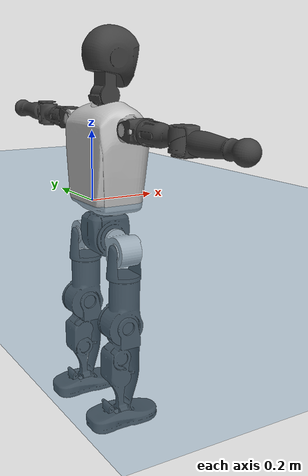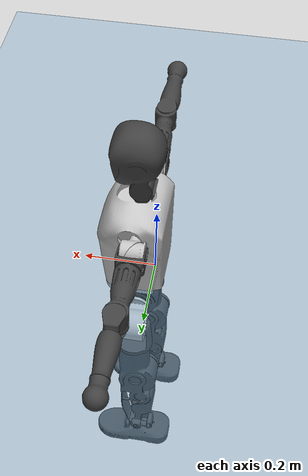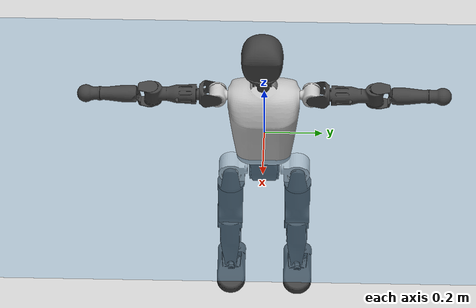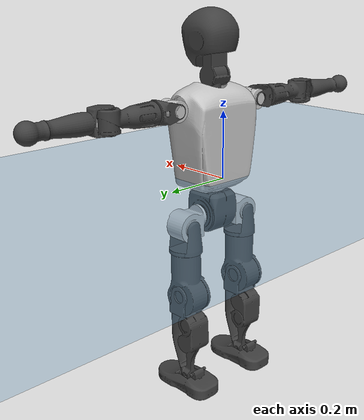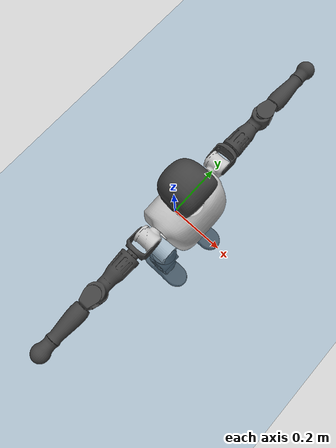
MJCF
<mujoco model="T1">
  <compiler angle="radian" assetdir="assets" balanceinertia="true" inertiafromgeom="false"/>

  <option timestep="0.005" density="1.2" viscosity="2e-05"/>

  <size nkey="1"/>

  <visual>
    <quality shadowsize="8192"/>
    <map shadowclip="0.5"/>
  </visual>

  <default>
    <default class="/">
      <joint armature="0.01" damping="0.01" frictionloss="0.1"/>
      <geom contype="0" conaffinity="0" group="1" solref="-1000 -80"/>
      <site size="0.01 0.005 0.005" group="5"/>
      <general forcelimited="true" biastype="affine" gainprm="25" biasprm="0 -25 -0.6"/>
      <default class="t1">
        <geom rgba="0.25 0.25 0.25 1"/>
        <default class="visual">
          <geom type="mesh" group="2"/>
        </default>
        <default class="collision">
          <geom group="3"/>
        </default>
        <default class="foot">
          <geom size="0.1115 0.05 0.015" type="box" condim="6" group="4" priority="1" solimp="0.015 1 0.015"/>
        </default>
        <default class="reward_collision_sphere">
          <geom group="5" rgba="1 0 0 1"/>
        </default>
      </default>
    </default>
  </default>

  <asset>
    <texture type="skybox" colorspace="auto" name="//unnamed_texture_0" builtin="gradient" rgb1="0.95 0.95 0.95" rgb2="0.95 0.95 0.95" width="100" height="600"/>
    <texture type="2d" colorspace="auto" name="texplane" builtin="checker" rgb1="0.345 0.575 0.748" rgb2="0.345 0.575 0.748" markrgb="1 1 1" width="512" height="512"/>
    <material name="MatPlane" class="/" texture="texplane" texuniform="true" texrepeat="2 2" specular="0.9"/>
    <mesh name="Trunk" class="/" file="Trunk.stl"/>
    <mesh name="H1" class="/" file="H1.stl"/>
    <mesh name="H2" class="/" file="H2.stl"/>
    <mesh name="AL1" class="/" file="AL1.stl"/>
    <mesh name="AL2" class="/" file="AL2.stl"/>
    <mesh name="AL3" class="/" file="AL3.stl"/>
    <mesh name="left_hand_link" class="/" file="left_hand_link.stl"/>
    <mesh name="AR1" class="/" file="AR1.stl"/>
    <mesh name="AR2" class="/" file="AR2.stl"/>
    <mesh name="AR3" class="/" file="AR3.stl"/>
    <mesh name="right_hand_link" class="/" file="right_hand_link.stl"/>
    <mesh name="Waist" class="/" file="Waist.stl"/>
    <mesh name="Hip_Pitch_Left" class="/" file="Hip_Pitch_Left.stl"/>
    <mesh name="Hip_Roll_Left" class="/" file="Hip_Roll_Left.stl"/>
    <mesh name="Hip_Yaw_Left" class="/" file="Hip_Yaw_Left.stl"/>
    <mesh name="Shank_Left" class="/" file="Shank_Left.stl"/>
    <mesh name="Ankle_Cross_Left" class="/" file="Ankle_Cross_Left.stl"/>
    <mesh name="left_foot_link" class="/" file="left_foot_link.stl"/>
    <mesh name="Hip_Pitch_Right" class="/" file="Hip_Pitch_Right.stl"/>
    <mesh name="Hip_Roll_Right" class="/" file="Hip_Roll_Right.stl"/>
    <mesh name="Hip_Yaw_Right" class="/" file="Hip_Yaw_Right.stl"/>
    <mesh name="Shank_Right" class="/" file="Shank_Right.stl"/>
    <mesh name="Ankle_Cross_Right" class="/" file="Ankle_Cross_Right.stl"/>
    <mesh name="right_foot_link" class="/" file="right_foot_link.stl"/>
  </asset>

  <worldbody>
    <geom name="floor" class="/" size="100 100 0.125" type="plane" group="0" material="MatPlane"/>
    <light name="toplight_shadow" class="/" pos="0 0 5" dir="0.0990148 0.0990148 -0.990148" type="directional" ambient="0.04 0.04 0.04" diffuse="0.55 0.55 0.55" specular="0.12 0.12 0.12"/>
    <light name="toplight_fill" class="/" pos="0 0 5" dir="0.0990148 0.0990148 -0.990148" type="directional" castshadow="false" ambient="0.04 0.04 0.04" diffuse="0.3 0.3 0.3" specular="0.08 0.08 0.08"/>
    <body name="trunk" childclass="t1" pos="-0.00236465 0.000370252 0.00174474" quat="1 0.000693424 3.66382e-06 0.000223234">
      <inertial pos="0.0381226 -0.00312723 0.104807" quat="0.99988 -0.00430313 -0.0115877 0.0093023" mass="9.55179" diaginertia="0.0154764 0.115467 0.0508045"/>
      <joint name="//unnamed_joint_0" type="free" armature="0" damping="0" frictionloss="0"/>
      <geom name="//unnamed_geom_1" class="visual" rgba="0.76 0.76 0.76 1" mesh="Trunk"/>
      <geom name="//unnamed_geom_2" class="collision" size="0.0689123 0.091883 0.137825" pos="0.0417359 0 0.117171" type="box"/>
      <geom name="//unnamed_geom_3" class="reward_collision_sphere" size="0.105665" pos="0.0417359 0 0.0976423"/>
      <geom name="//unnamed_geom_4" class="reward_collision_sphere" size="0.0137825" pos="0.0417359 0.0921798 0"/>
      <geom name="//unnamed_geom_5" class="reward_collision_sphere" size="0.0137825" pos="0.0417359 -0.0921798 0"/>
      <geom name="//unnamed_geom_6" class="reward_collision_sphere" size="0.0137825" pos="0.0417359 0.116038 0.175756"/>
      <geom name="//unnamed_geom_7" class="reward_collision_sphere" size="0.0137825" pos="0.0417359 -0.116038 0.175756"/>
      <site name="imu" pos="-0.00547544 0.00770994 -0.000344961" size="0.0091883"/>
      <camera name="track" pos="0 -2.16894 0" quat="0.707107 0.707107 0 0" mode="trackcom"/>
      <camera name="ego_camera" pos="0.0848631 0 0.410098" quat="-0.5 -0.5 0.5 0.5"/>
      <body name="H1" pos="0.0425271 -0.00214535 0.235657" quat="1 -0.000287012 -0.000197914 -0.000784867">
        <inertial pos="0.000924309 -0.00160821 0.0574089" quat="0.770023 -0.023759 0.0122071 0.637456" mass="0.35245" diaginertia="4.16396e-05 0.00034826 0.000134758"/>
        <joint name="AAHead_yaw" pos="0 0 0" axis="0.00814096 -0.00212984 0.999965" range="-1.58924 1.61228" armature="0.00992892" damping="0.0139414" frictionloss="0.0894282"/>
        <geom name="//unnamed_geom_8" class="visual" mesh="H1"/>
        <body name="H2" pos="-0.00116377 -0.00227869 0.059047" quat="1 0.000679683 -3.16122e-05 -0.000168442">
          <inertial pos="0.00542752 0.00389303 0.0971481" quat="0.98928 0.100465 -0.0799802 -0.0695379" mass="0.489666" diaginertia="0.000332906 0.00301913 0.00154682"/>
          <joint name="Head_pitch" pos="0 0 0" axis="0.000852223 -1 -1.17691e-05" range="-1.26349 0.388789" armature="0.010179" damping="0.00218153" frictionloss="0.0803931"/>
          <geom name="//unnamed_geom_9" class="visual" mesh="H2"/>
          <geom name="//unnamed_geom_10" class="collision" size="0.0735064" pos="0.00695599 0 0.107407"/>
          <geom name="//unnamed_geom_11" class="reward_collision_sphere" size="0.0826947" pos="0.013912 0 0.0976423"/>
        </body>
      </body>
      <body name="AL1" pos="0.0388076 0.114494 0.216164" quat="0.999999 0.00120861 4.79874e-05 -0.000687648">
        <inertial pos="0.00088172 0.0511425 0.00265874" quat="0.509674 0.486683 -0.505431 0.497907" mass="0.389876" diaginertia="0.000212049 0.0018182 0.000239881"/>
        <joint name="Left_Shoulder_Pitch" pos="0 0 0" axis="0.00523101 0.999984 -0.0023264" stiffness="0.01061" range="-3.31992 1.17436" armature="0.00789391" damping="0" frictionloss="0.0998982"/>
        <geom name="//unnamed_geom_12" class="visual" rgba="0.76 0.76 0.76 1" mesh="AL1"/>
        <body name="AL2" pos="-0.00107878 0.051514 0.000511817" quat="0.999998 0.00181754 0.000689209 -0.000971365">
          <inertial pos="0.00297808 0.0448076 -0.000355527" quat="0.487214 0.511318 -0.487231 0.513597" mass="0.125908" diaginertia="6.47038e-05 0.000506538 0.000158863"/>
          <joint name="Left_Shoulder_Roll" pos="0 0 0" axis="-0.999864 -0.0122471 -0.0110714" stiffness="0.0177356" range="-1.61011 1.68987" armature="0.008001" damping="0.022799" frictionloss="0.0842824"/>
          <geom name="//unnamed_geom_13" class="visual" mesh="AL2"/>
          <body name="AL3" pos="0.00102598 0.0623141 -0.0010632" quat="0.999999 -0.000849584 -0.000764769 0.00017247">
            <inertial pos="0.000204844 0.0933409 -0.00281474" quat="0.702084 0.712078 0.00442141 0.00194839" mass="0.735147" diaginertia="0.00203166 0.0185118 0.000559711"/>
            <joint name="Left_Elbow_Pitch" pos="0 0 0" axis="-0.00139393 -0.999998 -0.00132223" stiffness="0.00312812" range="-2.34622 2.32676" armature="0.00820127" damping="0.0159881" frictionloss="0.0922378"/>
            <geom name="//unnamed_geom_14" class="visual" mesh="AL3"/>
            <geom name="//unnamed_geom_15" class="collision" size="0.0275649 0.0689123" pos="0 0.0542234 0" quat="0.707105 0.707108 0 0" type="cylinder"/>
            <geom name="//unnamed_geom_16" class="reward_collision_sphere" size="0.0330779"/>
            <body name="left_hand_link" pos="0.00217283 0.160564 0.00282423" quat="1 -0.000382439 7.45565e-05 -8.12716e-05">
              <inertial pos="-0.000265201 0.117839 0.00084594" quat="0.711424 0.702736 0.00268636 0.00560648" mass="0.260106" diaginertia="0.00136903 0.0119405 0.000197555"/>
              <joint name="Left_Elbow_Yaw" pos="0 0 0" axis="-0.00813683 0.000833651 0.999967" range="-2.43351 -0.0117899" armature="0.0079871" damping="0.010375" frictionloss="0.0985528"/>
              <geom name="//unnamed_geom_17" class="visual" mesh="left_hand_link"/>
              <geom name="//unnamed_geom_18" class="collision" size="0.0275649 0.0803977" pos="0 0.140981 0" quat="0.707105 0.707108 0 0" type="cylinder"/>
              <geom name="//unnamed_geom_19" class="reward_collision_sphere" size="0.0459415"/>
              <geom name="//unnamed_geom_20" class="reward_collision_sphere" size="0.0321591" pos="0 0.119292 0"/>
              <geom name="//unnamed_geom_21" class="reward_collision_sphere" size="0.0321591" pos="0 0.233161 0"/>
            </body>
          </body>
        </body>
      </body>
      <body name="AR1" pos="0.0395627 -0.11154 0.212473" quat="1 0.000204395 0.0002256 0.000833962">
        <inertial pos="-0.00128957 -0.0471061 -0.00197682" quat="0.503797 0.496251 -0.50432 0.495565" mass="0.411089" diaginertia="0.000229796 0.00195604 0.000267984"/>
        <joint name="Right_Shoulder_Pitch" pos="0 0 0" axis="-0.00271987 -0.999991 -0.00328394" stiffness="0.00736594" range="-1.27789 3.30883" armature="0.00864064" damping="0.0189463" frictionloss="0.103047"/>
        <geom name="//unnamed_geom_22" class="visual" rgba="0.76 0.76 0.76 1" mesh="AR1"/>
        <body name="AR2" pos="-0.00268208 -0.0512704 0.00146838" quat="1 -2.02566e-05 -1.04032e-05 2.2465e-06">
          <inertial pos="0.00148915 -0.0412943 0.00258289" quat="0.51739 0.487212 -0.506068 0.4887" mass="0.131118" diaginertia="6.68556e-05 0.000551178 0.000164032"/>
          <joint name="Right_Shoulder_Roll" pos="0 0 0" axis="-0.999984 0.00162239 -0.0054387" range="-1.79017 1.54206" armature="0.00898849" damping="0.0117912" frictionloss="0.0913569"/>
          <geom name="//unnamed_geom_23" class="visual" mesh="AR2"/>
          <body name="AR3" pos="0.00017929 -0.0668155 -0.0018702" quat="1 0.00065353 0.000244119 -9.23696e-05">
            <inertial pos="0.0023715 -0.0942395 -0.00178612" quat="0.707939 0.706261 -0.00237401 0.00356935" mass="0.823653" diaginertia="0.00218508 0.0199293 0.0005806"/>
            <joint name="Right_Elbow_Pitch" pos="0 0 0" axis="-0.00859107 0.999923 -0.00900492" range="-2.26169 2.27078" armature="0.00820982" damping="0.00673931" frictionloss="0.100251"/>
            <geom name="//unnamed_geom_24" class="visual" mesh="AR3"/>
            <geom name="//unnamed_geom_25" class="collision" size="0.0275649 0.0689123" pos="0 -0.0542234 0" quat="0.707105 0.707108 0 0" type="cylinder"/>
            <geom name="//unnamed_geom_26" class="reward_collision_sphere" size="0.0330779"/>
            <body name="right_hand_link" pos="-0.000726082 -0.157818 -0.00271458" quat="1 0.000426878 0.000432834 -0.00012499">
              <inertial pos="-0.00229956 -0.119352 0.00385245" quat="0.715029 0.699054 -0.00749798 0.00080339" mass="0.239732" diaginertia="0.00135437 0.0121787 0.000193407"/>
              <joint name="Right_Elbow_Yaw" pos="0 0 0" axis="0.00431166 -0.000110658 0.999991" stiffness="0.011047" range="0.0388706 2.38004" armature="0.00824203" damping="0" frictionloss="0.104051"/>
              <geom name="//unnamed_geom_27" class="visual" mesh="right_hand_link"/>
              <geom name="//unnamed_geom_28" class="collision" size="0.0275649 0.0803977" pos="0 -0.140981 0" quat="0.707105 0.707108 0 0" type="cylinder"/>
              <geom name="//unnamed_geom_29" class="reward_collision_sphere" size="0.0459415"/>
              <geom name="//unnamed_geom_30" class="reward_collision_sphere" size="0.0321591" pos="0 -0.119292 0"/>
              <geom name="//unnamed_geom_31" class="reward_collision_sphere" size="0.0321591" pos="0 -0.233161 0"/>
            </body>
          </body>
        </body>
      </body>
      <body name="Waist" pos="0.0460943 0.00118125 -0.110517" quat="0.999999 -0.000168472 -0.000607305 -0.000877668">
        <inertial pos="0.00474705 -0.0012297 0.00902804" quat="0.983645 0.00618927 -0.179968 -0.00394419" mass="1.98035" diaginertia="0.000881358 0.00786675 0.00426423"/>
        <joint name="Waist" pos="0 0 0" axis="0.00205405 -0.00530359 0.999984" stiffness="0.0221564" range="-1.56393 1.55534" armature="0.0102553" damping="0.00015267" frictionloss="0.0958858"/>
        <geom name="//unnamed_geom_32" class="visual" mesh="Waist"/>
        <body name="Hip_Pitch_Left" pos="-0.000602503 0.112973 -0.0027253" quat="0.999999 -0.00083911 0.00123947 -0.000101071">
          <inertial pos="-0.00230318 -0.0059983 -0.0161628" quat="0.97465 0.221855 0.028927 -0.000600375" mass="0.800517" diaginertia="0.000295974 0.00217103 0.0011485"/>
          <joint name="Left_Hip_Pitch" pos="0 0 0" axis="-0.00447396 0.9999 0.0134451" range="-1.7814 1.53555" armature="0.00866773" damping="0.014151" frictionloss="0.0817967"/>
          <geom name="//unnamed_geom_33" class="visual" rgba="0.76 0.76 0.76 1" mesh="Hip_Pitch_Left"/>
          <body name="Hip_Roll_Left" pos="-0.00276736 0.0025459 -0.0215601" quat="0.999999 0.00141336 0.000424954 0.000153963">
            <inertial pos="-0.000111749 -0.000577736 -0.0518618" quat="0.708024 -0.0057883 -0.00406526 0.706153" mass="0.324535" diaginertia="0.000287493 0.00239949 0.000482676"/>
            <joint name="Left_Hip_Roll" pos="0 0 0" axis="-0.999946 0.0102428 0.00175307" range="-1.55428 0.244648" armature="0.00920938" damping="0.01766" frictionloss="0.0896479"/>
            <geom name="//unnamed_geom_34" class="visual" mesh="Hip_Roll_Left"/>
            <geom name="//unnamed_geom_35" class="reward_collision_sphere" size="0.0505357"/>
            <body name="Hip_Yaw_Left" pos="-0.00173657 -0.000352405 -0.0803818" quat="1 -0.000202089 6.88048e-05 0.000431866">
              <inertial pos="-0.00402267 0.000400027 -0.088831" quat="0.698001 -0.0462769 -0.0292472 0.714001" mass="1.64585" diaginertia="0.00408286 0.0380093 0.00217393"/>
              <joint name="Left_Hip_Yaw" pos="0 0 0" axis="-0.000425823 0.0094768 -0.999955" range="-0.967735 1.00764" armature="0.00863572" damping="0.0128955" frictionloss="0.0889324"/>
              <geom name="//unnamed_geom_36" class="visual" mesh="Hip_Yaw_Left"/>
              <geom name="//unnamed_geom_37" class="collision" size="0.0459415 0.0735064" type="cylinder"/>
              <body name="Shank_Left" pos="-0.00877903 -0.00185121 -0.129968" quat="1 -3.26893e-05 0.000407002 0.000517942">
                <inertial pos="-0.0015856 0.00314189 -0.121628" quat="0.997581 0.00932201 -0.0266982 0.0634983" mass="1.333" diaginertia="0.00538351 0.0518934 0.00157532"/>
                <joint name="Left_Knee_Pitch" pos="0 0 0" axis="0.00384821 0.999963 0.00769756" range="0.0344088 2.34959" armature="0.0104792" damping="0.0174448" frictionloss="0.0725974"/>
                <geom name="//unnamed_geom_38" class="visual" mesh="Shank_Left"/>
                <geom name="//unnamed_geom_39" class="collision" size="0.0459415 0.0689123" pos="0 0 -0.117171" type="cylinder"/>
                <geom name="//unnamed_geom_40" class="reward_collision_sphere" size="0.059724"/>
                <body name="Ankle_Cross_Left" pos="0.00296378 0.00236103 -0.274395" quat="1 0.000173573 -0.000294871 -0.000199953">
                  <inertial pos="-0.00289418 -0.000484015 -0.00635745" quat="0.445834 0.550402 0.543319 0.450659" mass="0.0589163" diaginertia="4.9419e-06 4.19705e-05 1.03464e-05"/>
                  <joint name="Left_Ankle_Pitch" pos="0 0 0" axis="0.0135412 0.999894 0.00527089" stiffness="0.0153282" range="-0.922217 0.296381" armature="0.00925448" damping="0.0133758" frictionloss="0.0824539"/>
                  <geom name="//unnamed_geom_41" class="visual" mesh="Ankle_Cross_Left"/>
                  <body name="left_foot_link" pos="-0.00128541 0.00142878 -0.0125551" quat="0.999999 0.000692193 -0.00134999 -0.000289703">
                    <inertial pos="-0.00220717 -0.000703627 -0.0112766" quat="0.00228225 0.620344 0.00105512 0.784326" mass="0.538519" diaginertia="0.000446116 0.00367739 0.00199381"/>
                    <joint name="Left_Ankle_Roll" pos="0 0 0" axis="-0.999853 0.00911658 0.0145292" range="-0.416257 0.406951" armature="0.00923885" damping="0.00545722" frictionloss="0.103369"/>
                    <geom name="//unnamed_geom_42" class="visual" mesh="left_foot_link"/>
                    <geom name="left_foot" class="foot" size="0.0997184 0.0422796 0.0158211" pos="0.00695599 0 -0.0146463"/>
                    <geom name="//unnamed_geom_44" class="reward_collision_sphere" size="0.0477792" pos="0.00695599 0 -0.0146463"/>
                    <geom name="//unnamed_geom_45" class="reward_collision_sphere" size="0.0275649" pos="0.0660819 -0.0249428 -0.0146463"/>
                    <geom name="//unnamed_geom_46" class="reward_collision_sphere" size="0.0275649" pos="-0.0486919 -0.0249428 -0.0146463"/>
                    <site name="left_foot" class="foot" pos="0.00695599 0 -0.0146463" size="0.0091883"/>
                  </body>
                </body>
              </body>
            </body>
          </body>
        </body>
        <body name="Hip_Pitch_Right" pos="-4.46313e-05 -0.113626 -0.00201139" quat="1 -0.000233565 0.000103773 -0.000407262">
          <inertial pos="-0.00118924 0.00546386 -0.0180814" quat="0.972912 -0.230677 0.0144066 -0.00482201" mass="0.774477" diaginertia="0.000302966 0.00223993 0.00108908"/>
          <joint name="Right_Hip_Pitch" pos="0 0 0" axis="0.015574 -0.999879 -3.97047e-05" range="-1.56532 1.77836" armature="0.00884393" damping="0.00574271" frictionloss="0.0935892"/>
          <geom name="//unnamed_geom_47" class="visual" rgba="0.76 0.76 0.76 1" mesh="Hip_Pitch_Right"/>
          <body name="Hip_Roll_Right" pos="-0.00125391 -0.00288253 -0.0213681" quat="1 -0.000458228 0.000176718 4.51076e-05">
            <inertial pos="0.00202687 -0.00186845 -0.052198" quat="0.701105 -0.00228034 -0.00507571 0.713036" mass="0.294482" diaginertia="0.000288275 0.00228531 0.000443587"/>
            <joint name="Right_Hip_Roll" pos="0 0 0" axis="-0.999988 -0.00164537 0.00450842" stiffness="0.00164094" range="-0.22793 1.5206" armature="0.0100668" damping="0.0128455" frictionloss="0.0835544"/>
            <geom name="//unnamed_geom_48" class="visual" mesh="Hip_Roll_Right"/>
            <geom name="//unnamed_geom_49" class="reward_collision_sphere" size="0.0505357"/>
            <body name="Hip_Yaw_Right" pos="-0.00112359 -0.00194957 -0.0795484" quat="1 0.000244851 -0.000164427 -0.000215878">
              <inertial pos="-0.00502275 0.00113582 -0.0898326" quat="0.718418 -0.0390423 -0.0399368 0.693366" mass="1.61724" diaginertia="0.00411155 0.0369651 0.00227832"/>
              <joint name="Right_Hip_Yaw" pos="0 0 0" axis="0.00150614 0.000927783 -0.999998" range="-1.05179 0.993334" armature="0.0105382" damping="0" frictionloss="0.081204"/>
              <geom name="//unnamed_geom_50" class="visual" mesh="Hip_Yaw_Right"/>
              <geom name="//unnamed_geom_51" class="collision" size="0.0459415 0.0735064" type="cylinder"/>
              <body name="Shank_Right" pos="-0.0118952 -0.00238487 -0.13327" quat="1 -0.00030296 -0.000190942 0.000211517">
                <inertial pos="-0.00719375 -0.00424039 -0.117268" quat="0.999221 -0.00108036 -0.0241986 -0.0311517" mass="1.33261" diaginertia="0.00522465 0.0488455 0.00164523"/>
                <joint name="Right_Knee_Pitch" pos="0 0 0" axis="-0.0147846 -0.999884 -0.00366105" range="-2.34836 -0.0103856" armature="0.0103712" damping="0.0124648" frictionloss="0.101261"/>
                <geom name="//unnamed_geom_52" class="visual" mesh="Shank_Right"/>
                <geom name="//unnamed_geom_53" class="collision" size="0.0459415 0.0689123" pos="0 0 -0.117171" type="cylinder"/>
                <geom name="//unnamed_geom_54" class="reward_collision_sphere" size="0.059724"/>
                <body name="Ankle_Cross_Right" pos="0.00162987 0.00228832 -0.272947" quat="0.999999 -9.07919e-05 0.000407851 0.00128253">
                  <inertial pos="-6.12689e-05 0.00158893 -0.00701426" quat="0.441069 0.549892 0.558155 0.437654" mass="0.0566712" diaginertia="4.73677e-06 3.80712e-05 9.88486e-06"/>
                  <joint name="Right_Ankle_Pitch" pos="0 0 0" axis="0.0154425 -0.999809 0.0120097" range="-0.402744 0.871501" armature="0.0103218" damping="0.0160592" frictionloss="0.10397"/>
                  <geom name="//unnamed_geom_55" class="visual" mesh="Ankle_Cross_Right"/>
                  <body name="right_foot_link" pos="-0.00166158 8.32094e-05 -0.0117991" quat="1 1.91211e-05 -1.52936e-05 1.51921e-05">
                    <inertial pos="-0.0030441 0.000605739 -0.00792055" quat="-5.59201e-05 0.620802 3.50382e-06 0.783967" mass="0.540673" diaginertia="0.000420604 0.00357073 0.001904"/>
                    <joint name="Right_Ankle_Roll" pos="0 0 0" axis="-0.999996 -0.00230294 -0.00173636" range="-0.430318 0.389698" armature="0.0103965" damping="0.0118491" frictionloss="0.102007"/>
                    <geom name="//unnamed_geom_56" class="visual" mesh="right_foot_link"/>
                    <geom name="right_foot" class="foot" size="0.101092 0.0412292 0.0132529" pos="0.00695599 0 -0.0146463"/>
                    <geom name="//unnamed_geom_58" class="reward_collision_sphere" size="0.0367532"/>
                    <geom name="//unnamed_geom_59" class="reward_collision_sphere" size="0.0275649" pos="0.00695599 0 -0.0146463"/>
                    <geom name="//unnamed_geom_60" class="reward_collision_sphere" size="0.0275649" pos="0.0660819 0.0249428 -0.0146463"/>
                    <geom name="//unnamed_geom_61" class="reward_collision_sphere" size="0.0275649" pos="-0.0486919 0.0249428 -0.0146463"/>
                    <site name="right_foot" class="foot" pos="0.00695599 0 -0.0146463" size="0.0091883"/>
                  </body>
                </body>
              </body>
            </body>
          </body>
        </body>
      </body>
    </body>
  </worldbody>

  <contact>
    <pair class="/" geom1="floor" geom2="left_foot" name="//unnamed_contact_0"/>
    <pair class="/" geom1="floor" geom2="right_foot" name="//unnamed_contact_1"/>
  </contact>

  <actuator>
    <general name="AAHead_yaw" class="/" joint="AAHead_yaw" forcerange="-6.77354 6.77354" gainprm="21.3672" biasprm="0 -21.3672 -0.574303"/>
    <general name="Head_pitch" class="/" joint="Head_pitch" forcerange="-7.04042 7.04042" gainprm="21.3672" biasprm="0 -21.3672 -0.574303"/>
    <general name="Left_Shoulder_Pitch" class="/" joint="Left_Shoulder_Pitch" forcerange="-16.1631 16.1631" gainprm="21.3672" biasprm="0 -21.3672 -0.574303"/>
    <general name="Left_Shoulder_Roll" class="/" joint="Left_Shoulder_Roll" forcerange="-17.8801 17.8801" gainprm="21.3672" biasprm="0 -21.3672 -0.574303"/>
    <general name="Left_Elbow_Pitch" class="/" joint="Left_Elbow_Pitch" forcerange="-16.4699 16.4699" gainprm="21.3672" biasprm="0 -21.3672 -0.574303"/>
    <general name="Left_Elbow_Yaw" class="/" joint="Left_Elbow_Yaw" forcerange="-14.577 14.577" gainprm="21.3672" biasprm="0 -21.3672 -0.574303"/>
    <general name="Right_Shoulder_Pitch" class="/" joint="Right_Shoulder_Pitch" forcerange="-16.7609 16.7609" gainprm="21.3672" biasprm="0 -21.3672 -0.574303"/>
    <general name="Right_Shoulder_Roll" class="/" joint="Right_Shoulder_Roll" forcerange="-16.4315 16.4315" gainprm="21.3672" biasprm="0 -21.3672 -0.574303"/>
    <general name="Right_Elbow_Pitch" class="/" joint="Right_Elbow_Pitch" forcerange="-17.3146 17.3146" gainprm="21.3672" biasprm="0 -21.3672 -0.574303"/>
    <general name="Right_Elbow_Yaw" class="/" joint="Right_Elbow_Yaw" forcerange="-16.4058 16.4058" gainprm="21.3672" biasprm="0 -21.3672 -0.574303"/>
    <general name="Waist" class="/" joint="Waist" forcerange="-27.5225 27.5225" gainprm="21.3672" biasprm="0 -21.3672 -0.574303"/>
    <general name="Left_Hip_Pitch" class="/" joint="Left_Hip_Pitch" forcerange="-43.4798 43.4798" gainprm="21.3672" biasprm="0 -21.3672 -0.574303"/>
    <general name="Left_Hip_Roll" class="/" joint="Left_Hip_Roll" forcerange="-25.6883 25.6883" gainprm="21.3672" biasprm="0 -21.3672 -0.574303"/>
    <general name="Left_Hip_Yaw" class="/" joint="Left_Hip_Yaw" forcerange="-30.3372 30.3372" gainprm="21.3672" biasprm="0 -21.3672 -0.574303"/>
    <general name="Left_Knee_Pitch" class="/" joint="Left_Knee_Pitch" forcerange="-54.1104 54.1104" gainprm="21.3672" biasprm="0 -21.3672 -0.574303"/>
    <general name="Left_Ankle_Pitch" class="/" joint="Left_Ankle_Pitch" forcerange="-20.2067 20.2067" gainprm="21.3672" biasprm="0 -21.3672 -0.574303"/>
    <general name="Left_Ankle_Roll" class="/" joint="Left_Ankle_Roll" forcerange="-13.8763 13.8763" gainprm="21.3672" biasprm="0 -21.3672 -0.574303"/>
    <general name="Right_Hip_Pitch" class="/" joint="Right_Hip_Pitch" forcerange="-40.6037 40.6037" gainprm="21.3672" biasprm="0 -21.3672 -0.574303"/>
    <general name="Right_Hip_Roll" class="/" joint="Right_Hip_Roll" forcerange="-27.0827 27.0827" gainprm="21.3672" biasprm="0 -21.3672 -0.574303"/>
    <general name="Right_Hip_Yaw" class="/" joint="Right_Hip_Yaw" forcerange="-27.5644 27.5644" gainprm="21.3672" biasprm="0 -21.3672 -0.574303"/>
    <general name="Right_Knee_Pitch" class="/" joint="Right_Knee_Pitch" forcerange="-50.9432 50.9432" gainprm="21.3672" biasprm="0 -21.3672 -0.574303"/>
    <general name="Right_Ankle_Pitch" class="/" joint="Right_Ankle_Pitch" forcerange="-18.4394 18.4394" gainprm="21.3672" biasprm="0 -21.3672 -0.574303"/>
    <general name="Right_Ankle_Roll" class="/" joint="Right_Ankle_Roll" forcerange="-14.4794 14.4794" gainprm="21.3672" biasprm="0 -21.3672 -0.574303"/>
  </actuator>

  <sensor>
    <gyro site="imu" name="imu_angular_velocity"/>
    <velocimeter site="imu" name="imu_linear_velocity"/>
    <framelinvel objtype="site" objname="left_foot" name="left_foot_global_linear_velocity"/>
    <framelinvel objtype="site" objname="right_foot" name="right_foot_global_linear_velocity"/>
  </sensor>

  <keyframe>
    <key name="home" qpos="0 0 0.6385 1 0 0 0 0 0 0 1.4 0 -0.4 0 -1.4 0 0.4 0 -0.4 0 0 0.8 -0.4 0 0.4 0 0 -0.8 0.4 0"/>
  </keyframe>
</mujoco>
